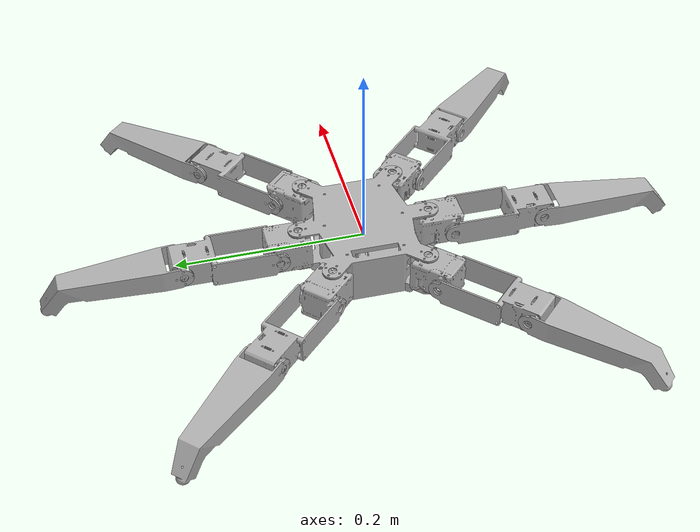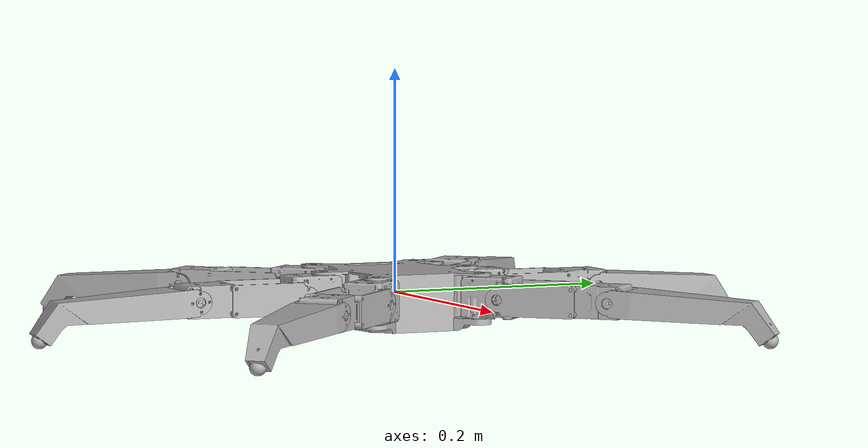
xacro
<?xml version="1.0" encoding="UTF-8" ?>

<robot xmlns:xacro="http://ros.org/wiki/xacro" name="Hexapod">

    <!-- parameters -->
    <xacro:property name="pi" value="3.1415926535897931"/>
    <xacro:property name="coxa_length" value="0.024"/>
    <xacro:property name="femur_length" value="0.10"/>
    <xacro:property name="tibia_length_x" value="0.146364"/>
    <xacro:property name="tibia_length_y" value="0.035"/>

    <link name="base_link"/>

    <!-- foot -->
    <joint name="base_floor_link" type="fixed">
        <origin xyz="0.0 0.0 -0.031029" rpy="0.0 0.0 0.0" />
        <parent link="base_link" />
        <child link="base_floor_link" />
    </joint>
    <link name="base_floor_link">
        <inertial>
            <origin xyz="0.0 0.0 0.0" rpy="0.0 0.0 0.0" />
            <mass value="0.00001"/>
            <inertia
                ixx="1.0" ixy="0.0"  ixz="0.0"
                iyy="1.0" iyz="0.0"
                izz="1.0" />
        </inertial>
    </link>

    <joint name="base_joint" type="fixed">
        <parent link="base_link"/>
        <child link="body_link"/>
        <origin xyz="0.0 0.0 0.0" rpy="0.0 0.0 0.0"/>
    </joint>

    <link name="body_link">
        <visual>
            <origin xyz="-0.034138 0.204808 -0.031029" rpy="${pi/2} 0.0 0.0"/>
            <geometry>
                <mesh filename="package://hexapod_javi_sim/meshes/base_link.stl" scale="0.001 0.001 0.001"/>
            </geometry>
            <material name="">
                <color rgba="0.7 0.7 0.7 1"/>
            </material>
        </visual>
        <collision>
            <origin xyz="0.0 0.0 0.0" rpy="0.0 0.0 0.0"/>
            <geometry>
                <mesh filename="package://hexapod_javi_sim/meshes/base_link.stl" scale="0.001 0.001 0.001"/>
            </geometry>
            <material name="">
                <color rgba="0.7 0.7 0.7 1"/>
            </material>
        </collision>
        <inertial>
            <origin xyz="0.0 0.0 0.0" rpy="0.0 0.0 0.0" />
            <mass value="0.00001"/>
            <inertia
                ixx="1.0" ixy="0.0"  ixz="0.0"
                iyy="1.0" iyz="0.0"
                izz="1.0" />
        </inertial>
    </link>
    <gazebo reference="body_link">
        <material>Gazebo/Black</material>
    </gazebo>

    <!-- Joint properties-->
    <xacro:property name="joint_lower_limit" value="-${3.14}"/>
    <xacro:property name="joint_upper_limit" value="${3.14}"/>
    <xacro:property name="joint_effort" value="6.0"/>
    <xacro:property name="joint_velocity" value="0.524"/>

    <!-- Leg macro -->
    <xacro:macro name="leg" params="side position x y angle axis">

        <!-- leg position -->
        <joint name="leg_center_joint_${side}${position}" type="fixed">
            <origin xyz="${x} ${y} 0.0" rpy="0.0 0.0 0.0"/>
            <parent link="body_link"/>
            <child link="leg_center_${side}${position}"/>
        </joint>
        <link name="leg_center_${side}${position}">
            <inertial>
                <origin xyz="0.0 0.0 0.0" rpy="0.0 0.0 0.0" />
                <mass value="0.00001"/>
                <inertia
                    ixx="1.0" ixy="0.0"  ixz="0.0"
                    iyy="1.0" iyz="0.0"
                    izz="1.0" />
            </inertial>
        </link>

        <!-- coxa -->
        <joint name="coxa_joint_${side}${position}" type="revolute">
            <origin xyz="${x} ${y} 0.0" rpy="0.0 0.0 ${angle}"/>
            <parent link="body_link"/>
            <child link="coxa_${side}${position}"/>
            <axis xyz="0.0 0.0 1.0"/>
            <limit lower="${joint_lower_limit}" upper="${joint_upper_limit}" effort="${joint_effort}" velocity="${joint_velocity}"/>
        </joint>
        <transmission name="coxa_transmission_${side}${position}">
            <type>transmission_interface/SimpleTransmission</type>
            <joint name="coxa_joint_${side}${position}">
                <hardwareInterface>hardware_interface/EffortJointInterface</hardwareInterface>
            </joint>
            <actuator name="coxa_motor_${side}${position}">
                <hardwareInterface>hardware_interface/EffortJointInterface</hardwareInterface>
                <mechanicalReduction>1</mechanicalReduction>
            </actuator>
        </transmission>
        <link name="coxa_${side}${position}">
            <visual>
                <origin xyz="0.012 0.0 0.0" rpy="0.0 0.0 ${pi/2}"/>
                <geometry>
                    <mesh filename="package://hexapod_javi_sim/meshes/coxa_link.stl" scale="0.001 0.001 0.001"/>
                </geometry>
                <material name="">
                    <color rgba="0.7 0.7 0.7 1"/>
                </material>
            </visual>
            <collision>
                <origin xyz="0.012 0.0 0.0" rpy="0.0 0.0 ${pi/2}" />
                <geometry>
                    <mesh filename="package://hexapod_javi_sim/meshes/coxa_link.stl" scale="0.001 0.001 0.001"/>
                </geometry>
                <material name="">
                    <color rgba="0.7 0.7 0.7 1" />
                </material>
            </collision>
            <inertial>
                <origin xyz="0.0 0.0 0.0" rpy="0.0 0.0 0.0" />
                <mass value="0.00001"/>
                <inertia
                    ixx="1.0" ixy="0.0"  ixz="0.0"
                    iyy="1.0" iyz="0.0"
                    izz="1.0" />
            </inertial>
        </link>
        <gazebo reference="coxa_${side}${position}">
            <material>Gazebo/Purple</material>
        </gazebo>

        <!-- femur -->
        <joint name="femur_joint_${side}${position}" type="revolute">
            <origin xyz="${coxa_length} 0.0 0.0" rpy="-${pi/2} ${pi/2} 0.0"/>
            <parent link="coxa_${side}${position}"/>
            <child link="femur_${side}${position}"/>
            <axis xyz="0.0 0.0 ${axis}"/>
            <limit lower="${joint_lower_limit}" upper="${joint_upper_limit}" effort="${joint_effort}" velocity="${joint_velocity}"/>
        </joint>
        <transmission name="femur_transmission_${side}${position}">
            <type>transmission_interface/SimpleTransmission</type>
            <joint name="femur_joint_${side}${position}">
                <hardwareInterface>hardware_interface/EffortJointInterface</hardwareInterface>
            </joint>
            <actuator name="femur_motor_${side}${position}">
                <hardwareInterface>hardware_interface/EffortJointInterface</hardwareInterface>
                <mechanicalReduction>1</mechanicalReduction>
            </actuator>
        </transmission>
        <link name="femur_${side}${position}">
            <visual>
                <origin xyz="0.066 -0.09827 -0.024054" rpy="0.0 0.0 ${-pi/2}"/>
                <geometry>
                    <mesh filename="package://hexapod_javi_sim/meshes/femur_link.stl" scale="0.001 0.001 0.001"/>
                </geometry>
                <material name="">
                    <color rgba="0.7 0.7 0.7 1"/>
                </material>
            </visual>
            <collision>
                <origin xyz="0.066 -0.09827 -0.024054" rpy="0.0 0.0 ${-pi/2} " />
                <geometry>
                    <mesh filename="package://hexapod_javi_sim/meshes/femur_link.stl" scale="0.001 0.001 0.001"/>
                </geometry>
                <material name="">
                    <color rgba="0.7 0.7 0.7 1" />
                </material>
            </collision>
            <inertial>
                <origin xyz="0.0 0.0 0.0" rpy="0.0 0.0 0.0" />
                <mass value="0.00001"/>
                <inertia
                    ixx="1.0" ixy="0.0"  ixz="0.0"
                    iyy="1.0" iyz="0.0"
                    izz="1.0" />
            </inertial>
        </link>

        <!-- tibia -->
        <joint name="tibia_joint_${side}${position}" type="revolute">
            <origin xyz="0.0 -${femur_length} 0.0" rpy="${pi} 0.0 0.0"/>
            <parent link="femur_${side}${position}"/>
            <child link="tibia_${side}${position}"/>
            <axis xyz="0.0 0.0 ${axis}"/>
            <limit lower="${joint_lower_limit}" upper="${joint_upper_limit}" effort="${joint_effort}" velocity="${joint_velocity}"/>
        </joint>
        <transmission name="tibia_transmission_${side}${position}">
            <type>transmission_interface/SimpleTransmission</type>
            <joint name="tibia_joint_${side}${position}">
                <hardwareInterface>hardware_interface/EffortJointInterface</hardwareInterface>
            </joint>
            <actuator name="tibia_motor_${side}${position}">
                <hardwareInterface>hardware_interface/EffortJointInterface</hardwareInterface>
                <mechanicalReduction>1</mechanicalReduction>
            </actuator>
        </transmission>
        <link name="tibia_${side}${position}">
            <visual>
                <origin xyz="0.0185 0.030551 -0.002466" rpy="${-pi*3/4} ${pi/2} 0.0"/>
                <geometry>
                    <mesh filename="package://hexapod_javi_sim/meshes/tibia_link.stl" scale="0.001 0.001 0.001"/>
                </geometry>
                <material name="">
                    <color rgba="0.7 0.7 0.7 1"/>
                </material>
            </visual>
            <collision>
                <origin xyz="0.0185 0.030551 -0.002466" rpy="${-pi*3/4} ${pi/2} 0.0" />
                <geometry>
                    <mesh filename="package://hexapod_javi_sim/meshes/tibia_link.stl" scale="0.001 0.001 0.001"/>
                </geometry>
                <material name="">
                    <color rgba="0.7 0.7 0.7 1" />
                </material>
            </collision>
            <inertial>
                <origin xyz="0.0 0.0 0.0" rpy="0.0 0.0 0.0" />
                <mass value="0.00001"/>
                <inertia
                    ixx="1.0" ixy="0.0"  ixz="0.0"
                    iyy="1.0" iyz="0.0"
                    izz="1.0" />
            </inertial>
        </link>
        <gazebo reference="tibia_${side}${position}">
            <material>Gazebo/DarkYellow</material>
        </gazebo>

        <!-- foot -->
        <joint name="foot_joint_${side}${position}" type="fixed">
            <origin xyz="${tibia_length_y} ${tibia_length_x} 0.0" rpy="0.0 0.0 0.0" />
            <parent link="tibia_${side}${position}" />
            <child link="foot_${side}${position}" />
        </joint>
        <link name="foot_${side}${position}">
            <inertial>
                <origin xyz="0.0 0.0 0.0" rpy="0.0 0.0 0.0" />
                <mass value="0.00001"/>
                <inertia
                    ixx="1.0" ixy="0.0"  ixz="0.0"
                    iyy="1.0" iyz="0.0"
                    izz="1.0" />
            </inertial>
        </link>

    </xacro:macro>

    <!-- Build robot model -->
    <xacro:leg side="R" position="B" x="-0.07" y="-0.05" angle="-${pi*3/4}" axis="1"/>
    <xacro:leg side="R" position="M" x="0.0" y="-0.07" angle="-${pi/2}" axis="1"/>
    <xacro:leg side="R" position="F" x="0.07" y="-0.05" angle="-${pi/4}" axis="1"/>

    <xacro:leg side="L" position="B" x="-0.07" y="0.05" angle="${pi*3/4}" axis="-1"/>
    <xacro:leg side="L" position="M" x="0.0" y="0.07" angle="${pi/2}" axis="-1"/>
    <xacro:leg side="L" position="F" x="0.07" y="0.05" angle="${pi/4}" axis="-1"/>

</robot>
